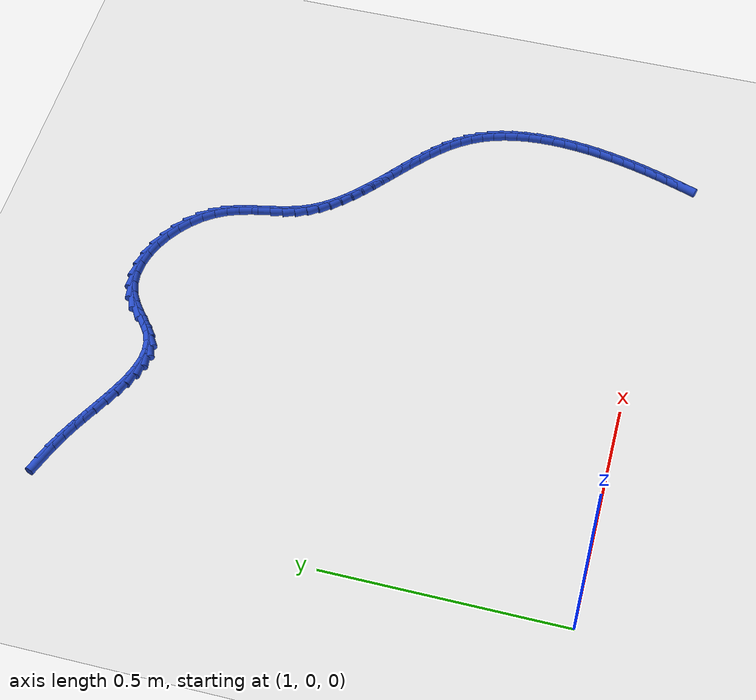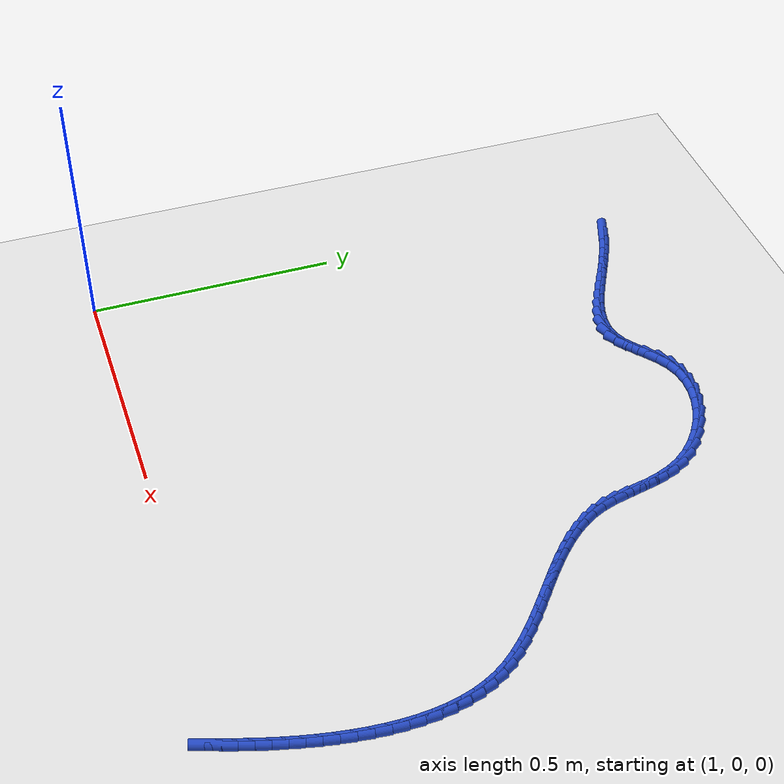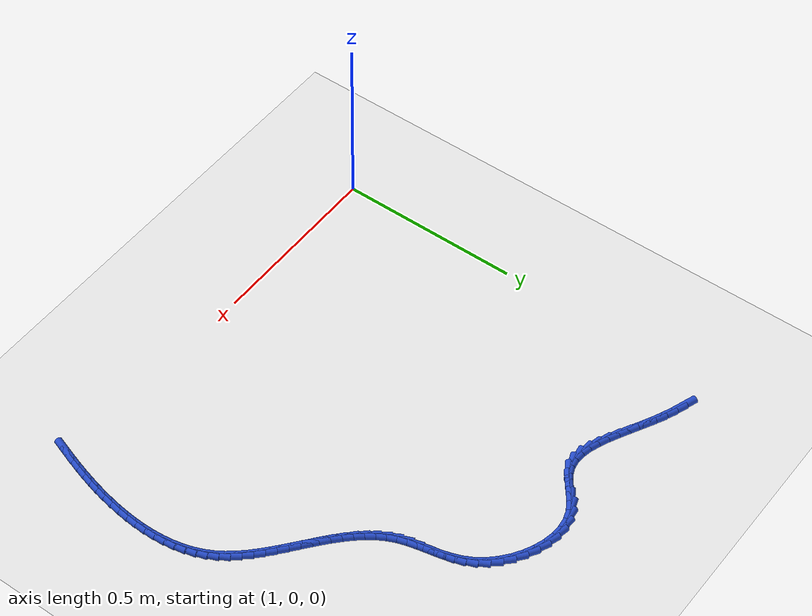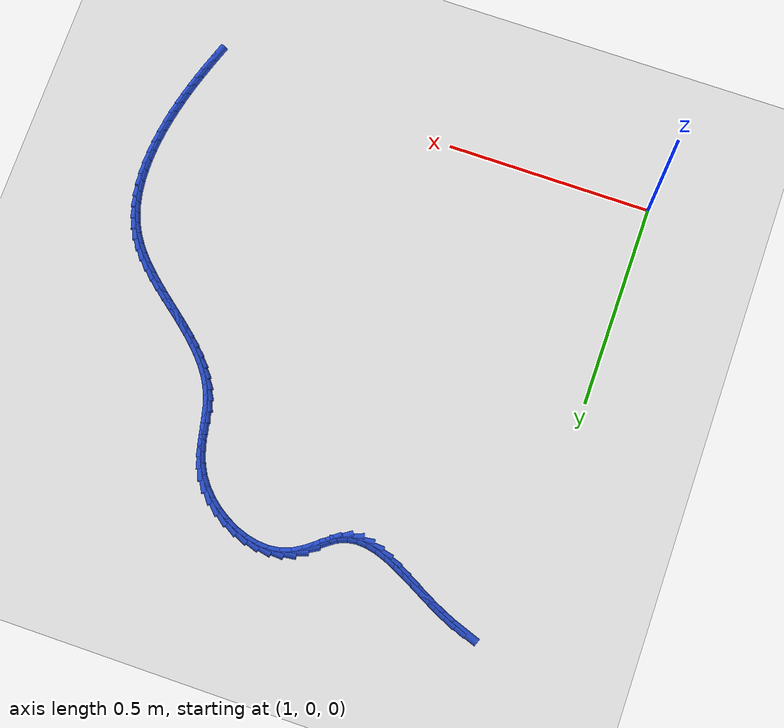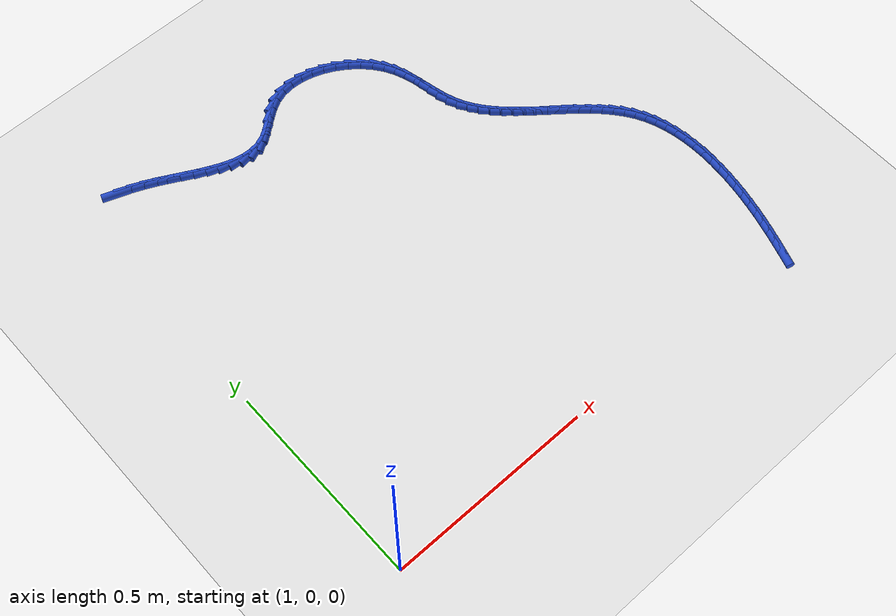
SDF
<sdf version="1.6">
 <world name="default">
  <model name="ground_plane">
   <static>1</static>
   <link name="link">
    <collision name="collision">
     <geometry><plane><normal>0 0 1</normal><size>100 100</size></plane></geometry>
     <surface><friction><ode><mu>100</mu><mu2>50</mu2></ode></friction></surface>
    </collision>
    <visual name="visual">
     <cast_shadows>0</cast_shadows>
     <geometry><plane><normal>0 0 1</normal><size>100 100</size></plane></geometry>
     <material>
      <script><uri>file://media/materials/scripts/gazebo.material</uri><name>Gazebo/WhiteGlow</name></script>
     </material>
    </visual>
   </link>
  </model>
  <model name="line">
   <link name="link_65">
    <pose>1.1025710387304979 1.0957129911606298 0.01 0 1.57 -0.344114325534344</pose>
    <collision name="collision">
     <geometry><cylinder><radius>0.01</radius><length>0.08</length></cylinder></geometry>
    </collision>
    <visual name="visual">
     <material>
      <script><name>Gazebo/Blue</name><uri>file://media/materials/scripts/gazebo.material</uri></script>
     </material>
     <geometry><cylinder><radius>0.01</radius><length>0.08</length></cylinder></geometry>
    </visual>
   </link>
   <link name="link_66">
    <pose>1.1304416452619481 1.0857249238199342 0.01 0 1.57 -0.39718096718352325</pose>
    <collision name="collision">
     <geometry><cylinder><radius>0.01</radius><length>0.08</length></cylinder></geometry>
    </collision>
    <visual name="visual">
     <material>
      <script><name>Gazebo/Blue</name><uri>file://media/materials/scripts/gazebo.material</uri></script>
     </material>
     <geometry><cylinder><radius>0.01</radius><length>0.08</length></cylinder></geometry>
    </visual>
   </link>
   <link name="link_67">
    <pose>1.1584066426240216 1.0739943283851923 0.01 0 1.57 -0.44253943432295173</pose>
    <collision name="collision">
     <geometry><cylinder><radius>0.01</radius><length>0.08</length></cylinder></geometry>
    </collision>
    <visual name="visual">
     <material>
      <script><name>Gazebo/Blue</name><uri>file://media/materials/scripts/gazebo.material</uri></script>
     </material>
     <geometry><cylinder><radius>0.01</radius><length>0.08</length></cylinder></geometry>
    </visual>
   </link>
   <link name="link_68">
    <pose>1.1863576080384484 1.0607487430096347 0.01 0 1.57 -0.4763200293725778</pose>
    <collision name="collision">
     <geometry><cylinder><radius>0.01</radius><length>0.08</length></cylinder></geometry>
    </collision>
    <visual name="visual">
     <material>
      <script><name>Gazebo/Blue</name><uri>file://media/materials/scripts/gazebo.material</uri></script>
     </material>
     <geometry><cylinder><radius>0.01</radius><length>0.08</length></cylinder></geometry>
    </visual>
   </link>
   <link name="link_69">
    <pose>1.2141899424522498 1.046388861783118 0.01 0 1.57 -0.49070860290854984</pose>
    <collision name="collision">
     <geometry><cylinder><radius>0.01</radius><length>0.08</length></cylinder></geometry>
    </collision>
    <visual name="visual">
     <material>
      <script><name>Gazebo/Blue</name><uri>file://media/materials/scripts/gazebo.material</uri></script>
     </material>
     <geometry><cylinder><radius>0.01</radius><length>0.08</length></cylinder></geometry>
    </visual>
   </link>
   <link name="link_70">
    <pose>1.2418060739232735 1.0316335988202325 0.01 0 1.57 -0.48526670342634476</pose>
    <collision name="collision">
     <geometry><cylinder><radius>0.01</radius><length>0.08</length></cylinder></geometry>
    </collision>
    <visual name="visual">
     <material>
      <script><name>Gazebo/Blue</name><uri>file://media/materials/scripts/gazebo.material</uri></script>
     </material>
     <geometry><cylinder><radius>0.01</radius><length>0.08</length></cylinder></geometry>
    </visual>
   </link>
   <link name="link_71">
    <pose>1.2691091848304359 1.0172360273763228 0.01 0 1.57 -0.4588818271686953</pose>
    <collision name="collision">
     <geometry><cylinder><radius>0.01</radius><length>0.08</length></cylinder></geometry>
    </collision>
    <visual name="visual">
     <material>
      <script><name>Gazebo/Blue</name><uri>file://media/materials/scripts/gazebo.material</uri></script>
     </material>
     <geometry><cylinder><radius>0.01</radius><length>0.08</length></cylinder></geometry>
    </visual>
   </link>
   <link name="link_72">
    <pose>1.2960024575526494 1.003949220706733 0.01 0 1.57 -0.4085493971482656</pose>
    <collision name="collision">
     <geometry><cylinder><radius>0.01</radius><length>0.08</length></cylinder></geometry>
    </collision>
    <visual name="visual">
     <material>
      <script><name>Gazebo/Blue</name><uri>file://media/materials/scripts/gazebo.material</uri></script>
     </material>
     <geometry><cylinder><radius>0.01</radius><length>0.08</length></cylinder></geometry>
    </visual>
   </link>
   <link name="link_73">
    <pose>1.3223890744688285 0.9925262520668084 0.01 0 1.57 -0.3291211478695809</pose>
    <collision name="collision">
     <geometry><cylinder><radius>0.01</radius><length>0.08</length></cylinder></geometry>
    </collision>
    <visual name="visual">
     <material>
      <script><name>Gazebo/Blue</name><uri>file://media/materials/scripts/gazebo.material</uri></script>
     </material>
     <geometry><cylinder><radius>0.01</radius><length>0.08</length></cylinder></geometry>
    </visual>
   </link>
   <link name="link_74">
    <pose>1.3481722179578866 0.9837201947118933 0.01 0 1.57 -0.21342404004557808</pose>
    <collision name="collision">
     <geometry><cylinder><radius>0.01</radius><length>0.08</length></cylinder></geometry>
    </collision>
    <visual name="visual">
     <material>
      <script><name>Gazebo/Blue</name><uri>file://media/materials/scripts/gazebo.material</uri></script>
     </material>
     <geometry><cylinder><radius>0.01</radius><length>0.08</length></cylinder></geometry>
    </visual>
   </link>
   <link name="link_75">
    <pose>1.3732550703987383 0.9782841218973324 0.01 0 1.57 -0.05401267233667709</pose>
    <collision name="collision">
     <geometry><cylinder><radius>0.01</radius><length>0.08</length></cylinder></geometry>
    </collision>
    <visual name="visual">
     <material>
      <script><name>Gazebo/Blue</name><uri>file://media/materials/scripts/gazebo.material</uri></script>
     </material>
     <geometry><cylinder><radius>0.01</radius><length>0.08</length></cylinder></geometry>
    </visual>
   </link>
   <link name="link_76">
    <pose>1.3975408141702967 0.9769711068784701 0.01 0 1.57 0.15116122862181205</pose>
    <collision name="collision">
     <geometry><cylinder><radius>0.01</radius><length>0.08</length></cylinder></geometry>
    </collision>
    <visual name="visual">
     <material>
      <script><name>Gazebo/Blue</name><uri>file://media/materials/scripts/gazebo.material</uri></script>
     </material>
     <geometry><cylinder><radius>0.01</radius><length>0.08</length></cylinder></geometry>
    </visual>
   </link>
   <link name="link_77">
    <pose>1.4209326316514768 0.9805342229106514 0.01 0 1.57 0.38897830048169796</pose>
    <collision name="collision">
     <geometry><cylinder><radius>0.01</radius><length>0.08</length></cylinder></geometry>
    </collision>
    <visual name="visual">
     <material>
      <script><name>Gazebo/Blue</name><uri>file://media/materials/scripts/gazebo.material</uri></script>
     </material>
     <geometry><cylinder><radius>0.01</radius><length>0.08</length></cylinder></geometry>
    </visual>
   </link>
   <link name="link_78">
    <pose>1.4433361527356174 0.9897165543469444 0.01 0 1.57 0.5880708497315619</pose>
    <collision name="collision">
     <geometry><cylinder><radius>0.01</radius><length>0.08</length></cylinder></geometry>
    </collision>
    <visual name="visual">
     <material>
      <script><name>Gazebo/Blue</name><uri>file://media/materials/scripts/gazebo.material</uri></script>
     </material>
     <geometry><cylinder><radius>0.01</radius><length>0.08</length></cylinder></geometry>
    </visual>
   </link>
   <link name="link_79">
    <pose>1.4649368354205679 1.0041191389153705 0.01 0 1.57 0.6697977133127421</pose>
    <collision name="collision">
     <geometry><cylinder><radius>0.01</radius><length>0.08</length></cylinder></geometry>
    </collision>
    <visual name="visual">
     <material>
      <script><name>Gazebo/Blue</name><uri>file://media/materials/scripts/gazebo.material</uri></script>
     </material>
     <geometry><cylinder><radius>0.01</radius><length>0.08</length></cylinder></geometry>
    </visual>
   </link>
   <link name="link_80">
    <pose>1.4864550411003423 1.0211599433497422 0.01 0 1.57 0.6489150926367878</pose>
    <collision name="collision">
     <geometry><cylinder><radius>0.01</radius><length>0.08</length></cylinder></geometry>
    </collision>
    <visual name="visual">
     <material>
      <script><name>Gazebo/Blue</name><uri>file://media/materials/scripts/gazebo.material</uri></script>
     </material>
     <geometry><cylinder><radius>0.01</radius><length>0.08</length></cylinder></geometry>
    </visual>
   </link>
   <link name="link_81">
    <pose>1.5086714095174 1.038010923767724 0.01 0 1.57 0.5284200570401701</pose>
    <collision name="collision">
     <geometry><cylinder><radius>0.01</radius><length>0.08</length></cylinder></geometry>
    </collision>
    <visual name="visual">
     <material>
      <script><name>Gazebo/Blue</name><uri>file://media/materials/scripts/gazebo.material</uri></script>
     </material>
     <geometry><cylinder><radius>0.01</radius><length>0.08</length></cylinder></geometry>
    </visual>
   </link>
   <link name="link_82">
    <pose>1.5323665636326609 1.0518440750842442 0.01 0 1.57 0.32306990645581307</pose>
    <collision name="collision">
     <geometry><cylinder><radius>0.01</radius><length>0.08</length></cylinder></geometry>
    </collision>
    <visual name="visual">
     <material>
      <script><name>Gazebo/Blue</name><uri>file://media/materials/scripts/gazebo.material</uri></script>
     </material>
     <geometry><cylinder><radius>0.01</radius><length>0.08</length></cylinder></geometry>
    </visual>
   </link>
   <link name="link_83">
    <pose>1.5580557891103624 1.0604448258706245 0.01 0 1.57 0.12121803474537517</pose>
    <collision name="collision">
     <geometry><cylinder><radius>0.01</radius><length>0.08</length></cylinder></geometry>
    </collision>
    <visual name="visual">
     <material>
      <script><name>Gazebo/Blue</name><uri>file://media/materials/scripts/gazebo.material</uri></script>
     </material>
     <geometry><cylinder><radius>0.01</radius><length>0.08</length></cylinder></geometry>
    </visual>
   </link>
   <link name="link_84">
    <pose>1.585317023810008 1.0637656603603693 0.01 0 1.57 -0.05413388210293116</pose>
    <collision name="collision">
     <geometry><cylinder><radius>0.01</radius><length>0.08</length></cylinder></geometry>
    </collision>
    <visual name="visual">
     <material>
      <script><name>Gazebo/Blue</name><uri>file://media/materials/scripts/gazebo.material</uri></script>
     </material>
     <geometry><cylinder><radius>0.01</radius><length>0.08</length></cylinder></geometry>
    </visual>
   </link>
   <link name="link_85">
    <pose>1.6135213212074038 1.0622373590745038 0.01 0 1.57 -0.2055741816111152</pose>
    <collision name="collision">
     <geometry><cylinder><radius>0.01</radius><length>0.08</length></cylinder></geometry>
    </collision>
    <visual name="visual">
     <material>
      <script><name>Gazebo/Blue</name><uri>file://media/materials/scripts/gazebo.material</uri></script>
     </material>
     <geometry><cylinder><radius>0.01</radius><length>0.08</length></cylinder></geometry>
    </visual>
   </link>
   <link name="link_86">
    <pose>1.6420397347783533 1.0562907025340502 0.01 0 1.57 -0.3386626963583649</pose>
    <collision name="collision">
     <geometry><cylinder><radius>0.01</radius><length>0.08</length></cylinder></geometry>
    </collision>
    <visual name="visual">
     <material>
      <script><name>Gazebo/Blue</name><uri>file://media/materials/scripts/gazebo.material</uri></script>
     </material>
     <geometry><cylinder><radius>0.01</radius><length>0.08</length></cylinder></geometry>
    </visual>
   </link>
   <link name="link_87">
    <pose>1.6702433179986624 1.0463564712600328 0.01 0 1.57 -0.4595636327937788</pose>
    <collision name="collision">
     <geometry><cylinder><radius>0.01</radius><length>0.08</length></cylinder></geometry>
    </collision>
    <visual name="visual">
     <material>
      <script><name>Gazebo/Blue</name><uri>file://media/materials/scripts/gazebo.material</uri></script>
     </material>
     <geometry><cylinder><radius>0.01</radius><length>0.08</length></cylinder></geometry>
    </visual>
   </link>
   <link name="link_88">
    <pose>1.6975031243441352 1.0328654457734754 0.01 0 1.57 -0.5741946608022397</pose>
    <collision name="collision">
     <geometry><cylinder><radius>0.01</radius><length>0.08</length></cylinder></geometry>
    </collision>
    <visual name="visual">
     <material>
      <script><name>Gazebo/Blue</name><uri>file://media/materials/scripts/gazebo.material</uri></script>
     </material>
     <geometry><cylinder><radius>0.01</radius><length>0.08</length></cylinder></geometry>
    </visual>
   </link>
   <link name="link_89">
    <pose>1.7231902072905765 1.0162484065954007 0.01 0 1.57 -0.6881968867603426</pose>
    <collision name="collision">
     <geometry><cylinder><radius>0.01</radius><length>0.08</length></cylinder></geometry>
    </collision>
    <visual name="visual">
     <material>
      <script><name>Gazebo/Blue</name><uri>file://media/materials/scripts/gazebo.material</uri></script>
     </material>
     <geometry><cylinder><radius>0.01</radius><length>0.08</length></cylinder></geometry>
    </visual>
   </link>
   <link name="link_90">
    <pose>1.7466756203137914 0.996936134246833 0.01 0 1.57 -0.8072250352982971</pose>
    <collision name="collision">
     <geometry><cylinder><radius>0.01</radius><length>0.08</length></cylinder></geometry>
    </collision>
    <visual name="visual">
     <material>
      <script><name>Gazebo/Blue</name><uri>file://media/materials/scripts/gazebo.material</uri></script>
     </material>
     <geometry><cylinder><radius>0.01</radius><length>0.08</length></cylinder></geometry>
    </visual>
   </link>
   <link name="link_91">
    <pose>1.7673304168895836 0.975359409248796 0.01 0 1.57 -0.9372810048647439</pose>
    <collision name="collision">
     <geometry><cylinder><radius>0.01</radius><length>0.08</length></cylinder></geometry>
    </collision>
    <visual name="visual">
     <material>
      <script><name>Gazebo/Blue</name><uri>file://media/materials/scripts/gazebo.material</uri></script>
     </material>
     <geometry><cylinder><radius>0.01</radius><length>0.08</length></cylinder></geometry>
    </visual>
   </link>
   <link name="link_92">
    <pose>1.7845256504937599 0.9519490121223132 0.01 0 1.57 -1.0809590733404753</pose>
    <collision name="collision">
     <geometry><cylinder><radius>0.01</radius><length>0.08</length></cylinder></geometry>
    </collision>
    <visual name="visual">
     <material>
      <script><name>Gazebo/Blue</name><uri>file://media/materials/scripts/gazebo.material</uri></script>
     </material>
     <geometry><cylinder><radius>0.01</radius><length>0.08</length></cylinder></geometry>
    </visual>
   </link>
   <link name="link_93">
    <pose>1.797756917653929 0.9271332105389944 0.01 0 1.57 -1.2084006710231385</pose>
    <collision name="collision">
     <geometry><cylinder><radius>0.01</radius><length>0.08</length></cylinder></geometry>
    </collision>
    <visual name="visual">
     <material>
      <script><name>Gazebo/Blue</name><uri>file://media/materials/scripts/gazebo.material</uri></script>
     </material>
     <geometry><cylinder><radius>0.01</radius><length>0.08</length></cylinder></geometry>
    </visual>
   </link>
   <link name="link_94">
    <pose>1.8075438964733959 0.9013196097348577 0.01 0 1.57 -1.2988621992553155</pose>
    <collision name="collision">
     <geometry><cylinder><radius>0.01</radius><length>0.08</length></cylinder></geometry>
    </collision>
    <visual name="visual">
     <material>
      <script><name>Gazebo/Blue</name><uri>file://media/materials/scripts/gazebo.material</uri></script>
     </material>
     <geometry><cylinder><radius>0.01</radius><length>0.08</length></cylinder></geometry>
    </visual>
   </link>
   <link name="link_95">
    <pose>1.8149092004455112 0.8749056674436594 0.01 0 1.57 -1.3501641833499434</pose>
    <collision name="collision">
     <geometry><cylinder><radius>0.01</radius><length>0.08</length></cylinder></geometry>
    </collision>
    <visual name="visual">
     <material>
      <script><name>Gazebo/Blue</name><uri>file://media/materials/scripts/gazebo.material</uri></script>
     </material>
     <geometry><cylinder><radius>0.01</radius><length>0.08</length></cylinder></geometry>
    </visual>
   </link>
   <link name="link_96">
    <pose>1.8208789249746276 0.8482887711461966 0.01 0 1.57 -1.3619372480371965</pose>
    <collision name="collision">
     <geometry><cylinder><radius>0.01</radius><length>0.08</length></cylinder></geometry>
    </collision>
    <visual name="visual">
     <material>
      <script><name>Gazebo/Blue</name><uri>file://media/materials/scripts/gazebo.material</uri></script>
     </material>
     <geometry><cylinder><radius>0.01</radius><length>0.08</length></cylinder></geometry>
    </visual>
   </link>
   <link name="link_97">
    <pose>1.826479165465097 0.8218663083232661 0.01 0 1.57 -1.3331476902555608</pose>
    <collision name="collision">
     <geometry><cylinder><radius>0.01</radius><length>0.08</length></cylinder></geometry>
    </collision>
    <visual name="visual">
     <material>
      <script><name>Gazebo/Blue</name><uri>file://media/materials/scripts/gazebo.material</uri></script>
     </material>
     <geometry><cylinder><radius>0.01</radius><length>0.08</length></cylinder></geometry>
    </visual>
   </link>
   <link name="link_98">
    <pose>1.8327360173212721 0.7960356664556654 0.01 0 1.57 -1.2614476309842282</pose>
    <collision name="collision">
     <geometry><cylinder><radius>0.01</radius><length>0.08</length></cylinder></geometry>
    </collision>
    <visual name="visual">
     <material>
      <script><name>Gazebo/Blue</name><uri>file://media/materials/scripts/gazebo.material</uri></script>
     </material>
     <geometry><cylinder><radius>0.01</radius><length>0.08</length></cylinder></geometry>
    </visual>
   </link>
   <link name="link_99">
    <pose>1.8406755759475055 0.7711942330241909 0.01 0 1.57 -1.150142868991606</pose>
    <collision name="collision">
     <geometry><cylinder><radius>0.01</radius><length>0.08</length></cylinder></geometry>
    </collision>
    <visual name="visual">
     <material>
      <script><name>Gazebo/Blue</name><uri>file://media/materials/scripts/gazebo.material</uri></script>
     </material>
     <geometry><cylinder><radius>0.01</radius><length>0.08</length></cylinder></geometry>
    </visual>
   </link>
   <link name="link_100">
    <pose>1.8511928563329572 0.7476843942117882 0.01 0 1.57 -1.0371086872125204</pose>
    <collision name="collision">
     <geometry><cylinder><radius>0.01</radius><length>0.08</length></cylinder></geometry>
    </collision>
    <visual name="visual">
     <material>
      <script><name>Gazebo/Blue</name><uri>file://media/materials/scripts/gazebo.material</uri></script>
     </material>
     <geometry><cylinder><radius>0.01</radius><length>0.08</length></cylinder></geometry>
    </visual>
   </link>
   <link name="link_101">
    <pose>1.864311340258593 0.7254828411622084 0.01 0 1.57 -0.9399220576830529</pose>
    <collision name="collision">
     <geometry><cylinder><radius>0.01</radius><length>0.08</length></cylinder></geometry>
    </collision>
    <visual name="visual">
     <material>
      <script><name>Gazebo/Blue</name><uri>file://media/materials/scripts/gazebo.material</uri></script>
     </material>
     <geometry><cylinder><radius>0.01</radius><length>0.08</length></cylinder></geometry>
    </visual>
   </link>
   <link name="link_102">
    <pose>1.8796989334883991 0.7044170654428205 0.01 0 1.57 -0.8595246646104502</pose>
    <collision name="collision">
     <geometry><cylinder><radius>0.01</radius><length>0.08</length></cylinder></geometry>
    </collision>
    <visual name="visual">
     <material>
      <script><name>Gazebo/Blue</name><uri>file://media/materials/scripts/gazebo.material</uri></script>
     </material>
     <geometry><cylinder><radius>0.01</radius><length>0.08</length></cylinder></geometry>
    </visual>
   </link>
   <link name="link_103">
    <pose>1.8970224922286858 0.6843141182269462 0.01 0 1.57 -0.7955100745900845</pose>
    <collision name="collision">
     <geometry><cylinder><radius>0.01</radius><length>0.08</length></cylinder></geometry>
    </collision>
    <visual name="visual">
     <material>
      <script><name>Gazebo/Blue</name><uri>file://media/materials/scripts/gazebo.material</uri></script>
     </material>
     <geometry><cylinder><radius>0.01</radius><length>0.08</length></cylinder></geometry>
    </visual>
   </link>
   <link name="link_104">
    <pose>1.9159488726857614 0.6650010506879075 0.01 0 1.57 -0.746851130581543</pose>
    <collision name="collision">
     <geometry><cylinder><radius>0.01</radius><length>0.08</length></cylinder></geometry>
    </collision>
    <visual name="visual">
     <material>
      <script><name>Gazebo/Blue</name><uri>file://media/materials/scripts/gazebo.material</uri></script>
     </material>
     <geometry><cylinder><radius>0.01</radius><length>0.08</length></cylinder></geometry>
    </visual>
   </link>
   <link name="link_105">
    <pose>1.9361449310659355 0.6463049139990272 0.01 0 1.57 -0.7123922718411091</pose>
    <collision name="collision">
     <geometry><cylinder><radius>0.01</radius><length>0.08</length></cylinder></geometry>
    </collision>
    <visual name="visual">
     <material>
      <script><name>Gazebo/Blue</name><uri>file://media/materials/scripts/gazebo.material</uri></script>
     </material>
     <geometry><cylinder><radius>0.01</radius><length>0.08</length></cylinder></geometry>
    </visual>
   </link>
   <link name="link_106">
    <pose>1.9572775235755167 0.6280527593336274 0.01 0 1.57 -0.691138164667741</pose>
    <collision name="collision">
     <geometry><cylinder><radius>0.01</radius><length>0.08</length></cylinder></geometry>
    </collision>
    <visual name="visual">
     <material>
      <script><name>Gazebo/Blue</name><uri>file://media/materials/scripts/gazebo.material</uri></script>
     </material>
     <geometry><cylinder><radius>0.01</radius><length>0.08</length></cylinder></geometry>
    </visual>
   </link>
   <link name="link_107">
    <pose>1.9790135064208132 0.6100716378650299 0.01 0 1.57 -0.6823980007150511</pose>
    <collision name="collision">
     <geometry><cylinder><radius>0.01</radius><length>0.08</length></cylinder></geometry>
    </collision>
    <visual name="visual">
     <material>
      <script><name>Gazebo/Blue</name><uri>file://media/materials/scripts/gazebo.material</uri></script>
     </material>
     <geometry><cylinder><radius>0.01</radius><length>0.08</length></cylinder></geometry>
    </visual>
   </link>
   <link name="link_108">
    <pose>2.0010197358081334 0.5921886007665571 0.01 0 1.57 -0.685845957914089</pose>
    <collision name="collision">
     <geometry><cylinder><radius>0.01</radius><length>0.08</length></cylinder></geometry>
    </collision>
    <visual name="visual">
     <material>
      <script><name>Gazebo/Blue</name><uri>file://media/materials/scripts/gazebo.material</uri></script>
     </material>
     <geometry><cylinder><radius>0.01</radius><length>0.08</length></cylinder></geometry>
    </visual>
   </link>
   <link name="link_109">
    <pose>2.0229630679437887 0.5742306992115312 0.01 0 1.57 -0.7015368542156368</pose>
    <collision name="collision">
     <geometry><cylinder><radius>0.01</radius><length>0.08</length></cylinder></geometry>
    </collision>
    <visual name="visual">
     <material>
      <script><name>Gazebo/Blue</name><uri>file://media/materials/scripts/gazebo.material</uri></script>
     </material>
     <geometry><cylinder><radius>0.01</radius><length>0.08</length></cylinder></geometry>
    </visual>
   </link>
   <link name="link_110">
    <pose>2.044510359034085 0.5560249843732742 0.01 0 1.57 -0.7298929966869852</pose>
    <collision name="collision">
     <geometry><cylinder><radius>0.01</radius><length>0.08</length></cylinder></geometry>
    </collision>
    <visual name="visual">
     <material>
      <script><name>Gazebo/Blue</name><uri>file://media/materials/scripts/gazebo.material</uri></script>
     </material>
     <geometry><cylinder><radius>0.01</radius><length>0.08</length></cylinder></geometry>
    </visual>
   </link>
   <link name="link_111">
    <pose>2.065328465285333 0.5373985074251085 0.01 0 1.57 -0.7716574896545925</pose>
    <collision name="collision">
     <geometry><cylinder><radius>0.01</radius><length>0.08</length></cylinder></geometry>
    </collision>
    <visual name="visual">
     <material>
      <script><name>Gazebo/Blue</name><uri>file://media/materials/scripts/gazebo.material</uri></script>
     </material>
     <geometry><cylinder><radius>0.01</radius><length>0.08</length></cylinder></geometry>
    </visual>
   </link>
   <link name="link_112">
    <pose>2.0850842429038416 0.5181783195403562 0.01 0 1.57 -0.8277890041479903</pose>
    <collision name="collision">
     <geometry><cylinder><radius>0.01</radius><length>0.08</length></cylinder></geometry>
    </collision>
    <visual name="visual">
     <material>
      <script><name>Gazebo/Blue</name><uri>file://media/materials/scripts/gazebo.material</uri></script>
     </material>
     <geometry><cylinder><radius>0.01</radius><length>0.08</length></cylinder></geometry>
    </visual>
   </link>
   <link name="link_113">
    <pose>2.1034445480959185 0.4981914718923396 0.01 0 1.57 -0.8992534524926855</pose>
    <collision name="collision">
     <geometry><cylinder><radius>0.01</radius><length>0.08</length></cylinder></geometry>
    </collision>
    <visual name="visual">
     <material>
      <script><name>Gazebo/Blue</name><uri>file://media/materials/scripts/gazebo.material</uri></script>
     </material>
     <geometry><cylinder><radius>0.01</radius><length>0.08</length></cylinder></geometry>
    </visual>
   </link>
   <link name="link_114">
    <pose>2.1200762370678734 0.47726501565438045 0.01 0 1.57 -0.9866594653063028</pose>
    <collision name="collision">
     <geometry><cylinder><radius>0.01</radius><length>0.08</length></cylinder></geometry>
    </collision>
    <visual name="visual">
     <material>
      <script><name>Gazebo/Blue</name><uri>file://media/materials/scripts/gazebo.material</uri></script>
     </material>
     <geometry><cylinder><radius>0.01</radius><length>0.08</length></cylinder></geometry>
    </visual>
   </link>
   <link name="link_115">
    <pose>2.134646166026015 0.45522600199980107 0.01 0 1.57 -1.087633969996375</pose>
    <collision name="collision">
     <geometry><cylinder><radius>0.01</radius><length>0.08</length></cylinder></geometry>
    </collision>
    <visual name="visual">
     <material>
      <script><name>Gazebo/Blue</name><uri>file://media/materials/scripts/gazebo.material</uri></script>
     </material>
     <geometry><cylinder><radius>0.01</radius><length>0.08</length></cylinder></geometry>
    </visual>
   </link>
   <link name="link_116">
    <pose>2.146866591784984 0.43193289300369203 0.01 0 1.57 -1.186732891439939</pose>
    <collision name="collision">
     <geometry><cylinder><radius>0.01</radius><length>0.08</length></cylinder></geometry>
    </collision>
    <visual name="visual">
     <material>
      <script><name>Gazebo/Blue</name><uri>file://media/materials/scripts/gazebo.material</uri></script>
     </material>
     <geometry><cylinder><radius>0.01</radius><length>0.08</length></cylinder></geometry>
    </visual>
   </link>
   <link name="link_117">
    <pose>2.156757939744422 0.40745736050874976 0.01 0 1.57 -1.2771284564032759</pose>
    <collision name="collision">
     <geometry><cylinder><radius>0.01</radius><length>0.08</length></cylinder></geometry>
    </collision>
    <visual name="visual">
     <material>
      <script><name>Gazebo/Blue</name><uri>file://media/materials/scripts/gazebo.material</uri></script>
     </material>
     <geometry><cylinder><radius>0.01</radius><length>0.08</length></cylinder></geometry>
    </visual>
   </link>
   <link name="link_118">
    <pose>2.164468729987981 0.3819597000498253 0.01 0 1.57 -1.3585871836896568</pose>
    <collision name="collision">
     <geometry><cylinder><radius>0.01</radius><length>0.08</length></cylinder></geometry>
    </collision>
    <visual name="visual">
     <material>
      <script><name>Gazebo/Blue</name><uri>file://media/materials/scripts/gazebo.material</uri></script>
     </material>
     <geometry><cylinder><radius>0.01</radius><length>0.08</length></cylinder></geometry>
    </visual>
   </link>
   <link name="link_119">
    <pose>2.170147900559179 0.3556004963318238 0.01 0 1.57 -1.4314080425945974</pose>
    <collision name="collision">
     <geometry><cylinder><radius>0.01</radius><length>0.08</length></cylinder></geometry>
    </collision>
    <visual name="visual">
     <material>
      <script><name>Gazebo/Blue</name><uri>file://media/materials/scripts/gazebo.material</uri></script>
     </material>
     <geometry><cylinder><radius>0.01</radius><length>0.08</length></cylinder></geometry>
    </visual>
   </link>
   <link name="link_120">
    <pose>2.173944389501533 0.3285403340596499 0.01 0 1.57 -1.4961993069818462</pose>
    <collision name="collision">
     <geometry><cylinder><radius>0.01</radius><length>0.08</length></cylinder></geometry>
    </collision>
    <visual name="visual">
     <material>
      <script><name>Gazebo/Blue</name><uri>file://media/materials/scripts/gazebo.material</uri></script>
     </material>
     <geometry><cylinder><radius>0.01</radius><length>0.08</length></cylinder></geometry>
    </visual>
   </link>
   <link name="link_121">
    <pose>2.1760071348585615 0.30093979793820863 0.01 0 1.57 -1.5537167061701633</pose>
    <collision name="collision">
     <geometry><cylinder><radius>0.01</radius><length>0.08</length></cylinder></geometry>
    </collision>
    <visual name="visual">
     <material>
      <script><name>Gazebo/Blue</name><uri>file://media/materials/scripts/gazebo.material</uri></script>
     </material>
     <geometry><cylinder><radius>0.01</radius><length>0.08</length></cylinder></geometry>
    </visual>
   </link>
   <link name="link_122">
    <pose>2.1764850746737845 0.27295947267240517 0.01 0 1.57 1.5368397507255895</pose>
    <collision name="collision">
     <geometry><cylinder><radius>0.01</radius><length>0.08</length></cylinder></geometry>
    </collision>
    <visual name="visual">
     <material>
      <script><name>Gazebo/Blue</name><uri>file://media/materials/scripts/gazebo.material</uri></script>
     </material>
     <geometry><cylinder><radius>0.01</radius><length>0.08</length></cylinder></geometry>
    </visual>
   </link>
   <link name="link_123">
    <pose>2.17552714699072 0.24475994296714482 0.01 0 1.57 1.4915217585255658</pose>
    <collision name="collision">
     <geometry><cylinder><radius>0.01</radius><length>0.08</length></cylinder></geometry>
    </collision>
    <visual name="visual">
     <material>
      <script><name>Gazebo/Blue</name><uri>file://media/materials/scripts/gazebo.material</uri></script>
     </material>
     <geometry><cylinder><radius>0.01</radius><length>0.08</length></cylinder></geometry>
    </visual>
   </link>
   <link name="link_124">
    <pose>2.173282289852887 0.21650179352733176 0.01 0 1.57 1.451223629522311</pose>
    <collision name="collision">
     <geometry><cylinder><radius>0.01</radius><length>0.08</length></cylinder></geometry>
    </collision>
    <visual name="visual">
     <material>
      <script><name>Gazebo/Blue</name><uri>file://media/materials/scripts/gazebo.material</uri></script>
     </material>
     <geometry><cylinder><radius>0.01</radius><length>0.08</length></cylinder></geometry>
    </visual>
   </link>
   <link name="link_125">
    <pose>2.169899441303802 0.1883456090578713 0.01 0 1.57 1.4153264211336303</pose>
    <collision name="collision">
     <geometry><cylinder><radius>0.01</radius><length>0.08</length></cylinder></geometry>
    </collision>
    <visual name="visual">
     <material>
      <script><name>Gazebo/Blue</name><uri>file://media/materials/scripts/gazebo.material</uri></script>
     </material>
     <geometry><cylinder><radius>0.01</radius><length>0.08</length></cylinder></geometry>
    </visual>
   </link>
   <link name="link_126">
    <pose>2.1655275393869853 0.16045197426366836 0.01 0 1.57 1.3832918062081478</pose>
    <collision name="collision">
     <geometry><cylinder><radius>0.01</radius><length>0.08</length></cylinder></geometry>
    </collision>
    <visual name="visual">
     <material>
      <script><name>Gazebo/Blue</name><uri>file://media/materials/scripts/gazebo.material</uri></script>
     </material>
     <geometry><cylinder><radius>0.01</radius><length>0.08</length></cylinder></geometry>
    </visual>
   </link>
   <link name="link_127">
    <pose>2.160315403022134 0.132981116334757 0.01 0 1.57 1.3543962178374496</pose>
    <collision name="collision">
     <geometry><cylinder><radius>0.01</radius><length>0.08</length></cylinder></geometry>
    </collision>
    <visual name="visual">
     <material>
      <script><name>Gazebo/Blue</name><uri>file://media/materials/scripts/gazebo.material</uri></script>
     </material>
     <geometry><cylinder><radius>0.01</radius><length>0.08</length></cylinder></geometry>
    </visual>
   </link>
   <link name="link_128">
    <pose>2.1543896817633055 0.1060267276753704 0.01 0 1.57 1.3280007724798117</pose>
    <collision name="collision">
     <geometry><cylinder><radius>0.01</radius><length>0.08</length></cylinder></geometry>
    </collision>
    <visual name="visual">
     <material>
      <script><name>Gazebo/Blue</name><uri>file://media/materials/scripts/gazebo.material</uri></script>
     </material>
     <geometry><cylinder><radius>0.01</radius><length>0.08</length></cylinder></geometry>
    </visual>
   </link>
   <link name="link_129">
    <pose>2.1478289977819878 0.07953836072365796 0.01 0 1.57 1.3042802121303214</pose>
    <collision name="collision">
     <geometry><cylinder><radius>0.01</radius><length>0.08</length></cylinder></geometry>
    </collision>
    <visual name="visual">
     <material>
      <script><name>Gazebo/Blue</name><uri>file://media/materials/scripts/gazebo.material</uri></script>
     </material>
     <geometry><cylinder><radius>0.01</radius><length>0.08</length></cylinder></geometry>
    </visual>
   </link>
   <link name="link_130">
    <pose>2.1407056916246945 0.053446715480624074 0.01 0 1.57 1.2834637971710088</pose>
    <collision name="collision">
     <geometry><cylinder><radius>0.01</radius><length>0.08</length></cylinder></geometry>
    </collision>
    <visual name="visual">
     <material>
      <script><name>Gazebo/Blue</name><uri>file://media/materials/scripts/gazebo.material</uri></script>
     </material>
     <geometry><cylinder><radius>0.01</radius><length>0.08</length></cylinder></geometry>
    </visual>
   </link>
   <link name="link_131">
    <pose>2.1330921038379396 0.027682491947272948 0.01 0 1.57 1.2657386981048329</pose>
    <collision name="collision">
     <geometry><cylinder><radius>0.01</radius><length>0.08</length></cylinder></geometry>
    </collision>
    <visual name="visual">
     <material>
      <script><name>Gazebo/Blue</name><uri>file://media/materials/scripts/gazebo.material</uri></script>
     </material>
     <geometry><cylinder><radius>0.01</radius><length>0.08</length></cylinder></geometry>
    </visual>
   </link>
   <link name="link_132">
    <pose>2.1250605749682348 0.0021763901246089007 0.01 0 1.57 1.251250134576868</pose>
    <collision name="collision">
     <geometry><cylinder><radius>0.01</radius><length>0.08</length></cylinder></geometry>
    </collision>
    <visual name="visual">
     <material>
      <script><name>Gazebo/Blue</name><uri>file://media/materials/scripts/gazebo.material</uri></script>
     </material>
     <geometry><cylinder><radius>0.01</radius><length>0.08</length></cylinder></geometry>
    </visual>
   </link>
   <link name="link_133">
    <pose>2.116683445562094 -0.023140889986363825 0.01 0 1.57 1.2401027888715639</pose>
    <collision name="collision">
     <geometry><cylinder><radius>0.01</radius><length>0.08</length></cylinder></geometry>
    </collision>
    <visual name="visual">
     <material>
      <script><name>Gazebo/Blue</name><uri>file://media/materials/scripts/gazebo.material</uri></script>
     </material>
     <geometry><cylinder><radius>0.01</radius><length>0.08</length></cylinder></geometry>
    </visual>
   </link>
  </model>
 </world>
</sdf>
